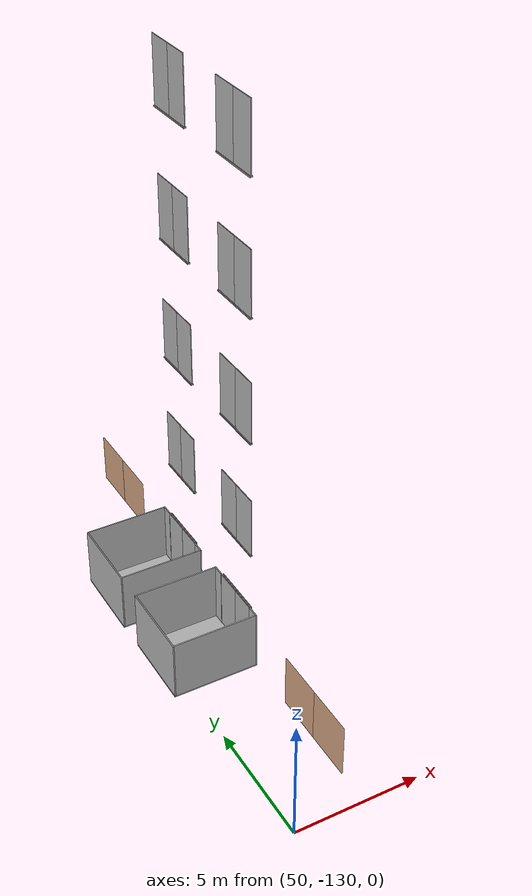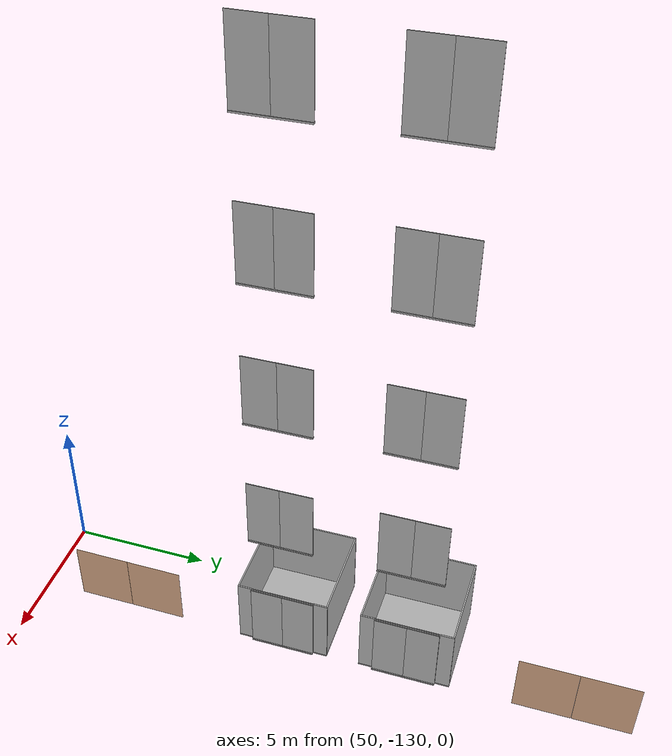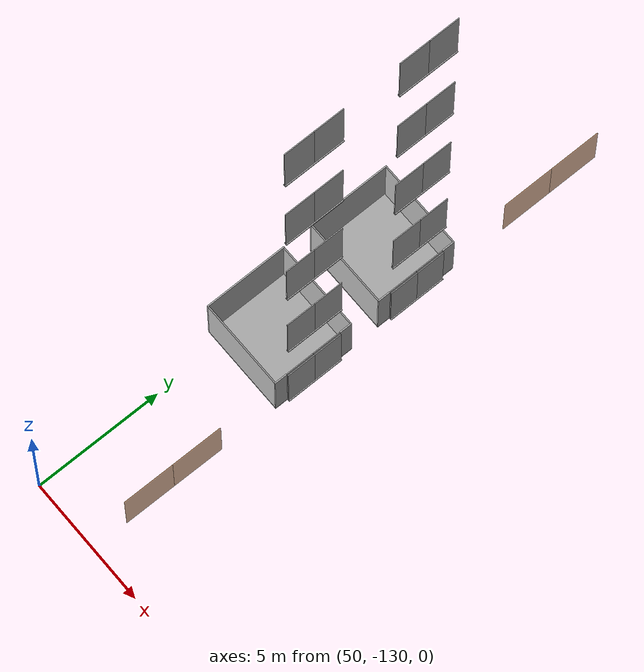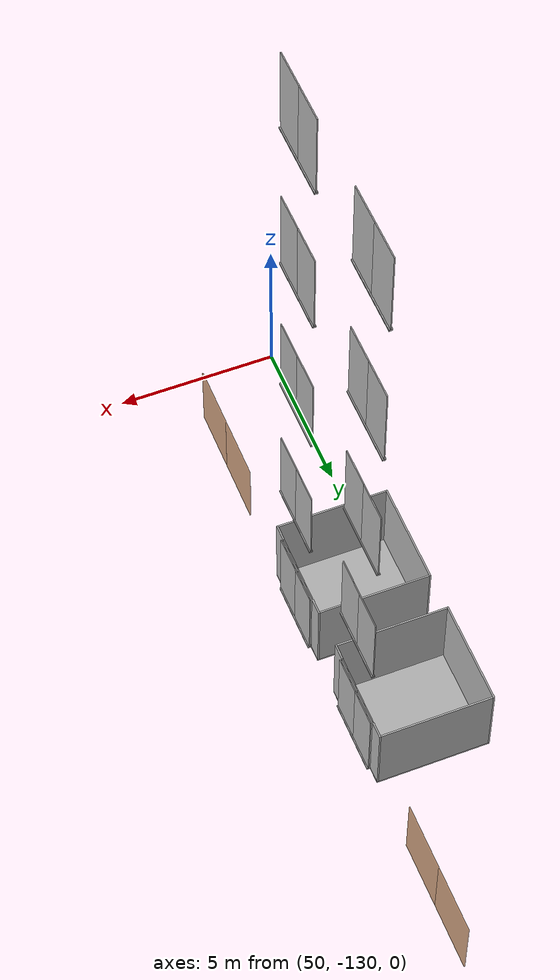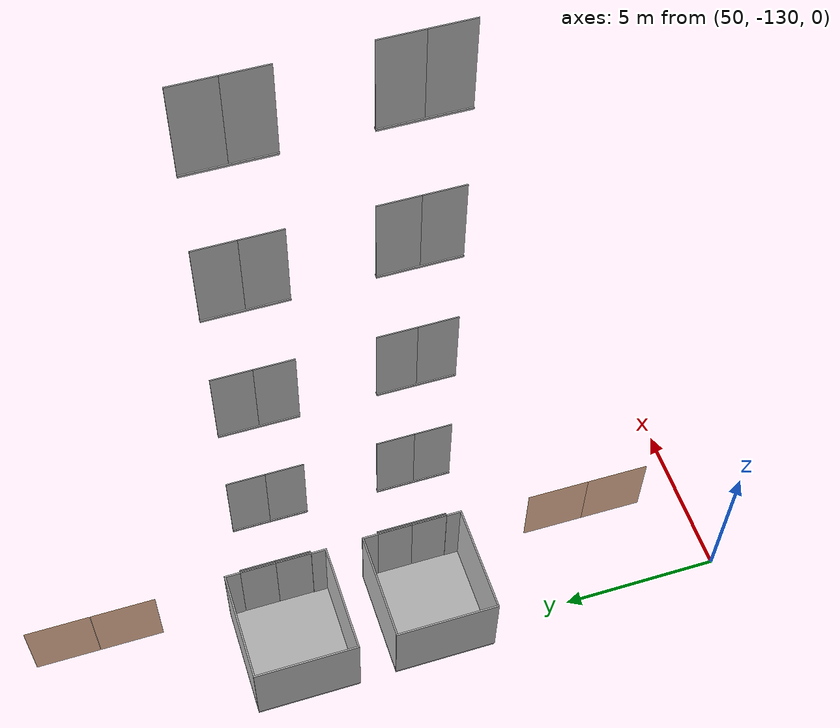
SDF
<sdf version="1.7">
 <world name="sim_world">
  <model name="puerta33">
   <pose>52.84211562555933 -110.4969035260426 0.0 0 0 1.571125227366169</pose>
   <link name="right">
    <pose>1.0067657605571885 0 1.11 0 0 0</pose>
    <visual name="right_visual">
     <geometry><box><size>2.003531521114377 0.03 2.2</size></box></geometry>
     <material>
      <ambient>0.5 0.25 0 0.6</ambient>
      <diffuse>0.5 0.25 0 0.6</diffuse>
      <pbr><metal><metalness>0.0</metalness></metal></pbr>
     </material>
    </visual>
    <collision name="right_collision">
     <geometry><box><size>2.003531521114377 0.03 2.2</size></box></geometry>
     <surface><contact><collide_bitmask>0x02</collide_bitmask></contact></surface>
    </collision>
    <inertial>
     <mass>50.0</mass>
     <inertia><ixx>20.17041666666667</ixx><iyy>36.89224398374538</iyy><izz>16.729327317078706</izz></inertia>
    </inertial>
   </link>
   <joint name="right_joint" type="revolute">
    <parent>world</parent>
    <child>right</child>
    <axis><xyz>0 0 -1</xyz><limit><lower>0</lower><upper>1.57</upper></limit></axis>
    <pose>1.0067657605571885 0 0 0 0 0</pose>
   </joint>
   <link name="left">
    <pose>-1.0067657605571885 0 1.11 0 0 0</pose>
    <visual name="left_visual">
     <geometry><box><size>2.003531521114377 0.03 2.2</size></box></geometry>
     <material>
      <ambient>0.5 0.25 0 0.6</ambient>
      <diffuse>0.5 0.25 0 0.6</diffuse>
      <pbr><metal><metalness>0.0</metalness></metal></pbr>
     </material>
    </visual>
    <collision name="left_collision">
     <geometry><box><size>2.003531521114377 0.03 2.2</size></box></geometry>
     <surface><contact><collide_bitmask>0x02</collide_bitmask></contact></surface>
    </collision>
    <inertial>
     <mass>50.0</mass>
     <inertia><ixx>20.17041666666667</ixx><iyy>36.89224398374538</iyy><izz>16.729327317078706</izz></inertia>
    </inertial>
   </link>
   <joint name="left_joint" type="revolute">
    <parent>world</parent>
    <child>left</child>
    <axis><xyz>0 0 -1</xyz><limit><lower>-1.57</lower><upper>0</upper></limit></axis>
    <pose>-1.0067657605571885 0 0 0 0 0</pose>
   </joint>
   <plugin name="register_component" filename="libregister_component.so">
    <component name="Door">
     <v_max_door>0.5</v_max_door>
     <a_max_door>0.3</a_max_door>
     <a_nom_door>0.15</a_nom_door>
     <dx_min_door>0.01</dx_min_door>
     <f_max_door>500.0</f_max_door>
     <ros_interface>true</ros_interface>
     <door name="puerta33" type="DoubleSwingDoor" left_joint_name="left_joint" right_joint_name="right_joint"/>
    </component>
   </plugin>
  </model>
  <model name="puerta34">
   <pose>52.81154465724002 -126.58664757472704 0.0 0 0 1.565759239575906</pose>
   <link name="right">
    <pose>1.0002811700648835 0 1.11 0 0 0</pose>
    <visual name="right_visual">
     <geometry><box><size>1.990562340129767 0.03 2.2</size></box></geometry>
     <material>
      <ambient>0.5 0.25 0 0.6</ambient>
      <diffuse>0.5 0.25 0 0.6</diffuse>
      <pbr><metal><metalness>0.0</metalness></metal></pbr>
     </material>
    </visual>
    <collision name="right_collision">
     <geometry><box><size>1.990562340129767 0.03 2.2</size></box></geometry>
     <surface><contact><collide_bitmask>0x02</collide_bitmask></contact></surface>
    </collision>
    <inertial>
     <mass>50.0</mass>
     <inertia><ixx>20.17041666666667</ixx><iyy>36.676410124762064</iyy><izz>16.513493458095393</izz></inertia>
    </inertial>
   </link>
   <joint name="right_joint" type="revolute">
    <parent>world</parent>
    <child>right</child>
    <axis><xyz>0 0 -1</xyz><limit><lower>0</lower><upper>1.57</upper></limit></axis>
    <pose>1.0002811700648835 0 0 0 0 0</pose>
   </joint>
   <link name="left">
    <pose>-1.0002811700648835 0 1.11 0 0 0</pose>
    <visual name="left_visual">
     <geometry><box><size>1.990562340129767 0.03 2.2</size></box></geometry>
     <material>
      <ambient>0.5 0.25 0 0.6</ambient>
      <diffuse>0.5 0.25 0 0.6</diffuse>
      <pbr><metal><metalness>0.0</metalness></metal></pbr>
     </material>
    </visual>
    <collision name="left_collision">
     <geometry><box><size>1.990562340129767 0.03 2.2</size></box></geometry>
     <surface><contact><collide_bitmask>0x02</collide_bitmask></contact></surface>
    </collision>
    <inertial>
     <mass>50.0</mass>
     <inertia><ixx>20.17041666666667</ixx><iyy>36.676410124762064</iyy><izz>16.513493458095393</izz></inertia>
    </inertial>
   </link>
   <joint name="left_joint" type="revolute">
    <parent>world</parent>
    <child>left</child>
    <axis><xyz>0 0 -1</xyz><limit><lower>-1.57</lower><upper>0</upper></limit></axis>
    <pose>-1.0002811700648835 0 0 0 0 0</pose>
   </joint>
   <plugin name="register_component" filename="libregister_component.so">
    <component name="Door">
     <v_max_door>0.5</v_max_door>
     <a_max_door>0.3</a_max_door>
     <a_nom_door>0.15</a_nom_door>
     <dx_min_door>0.01</dx_min_door>
     <f_max_door>500.0</f_max_door>
     <ros_interface>true</ros_interface>
     <door name="puerta34" type="DoubleSwingDoor" left_joint_name="left_joint" right_joint_name="right_joint"/>
    </component>
   </plugin>
  </model>
  <model name="ShaftDoor_lift_3_L0_name">
   <pose>52.88287037969792 -116.30427629511381 0.0 0 0 -1.57</pose>
   <link name="right_door">
    <pose>0.5625 0 1.25 0 0 0</pose>
    <visual name="right_door_visual">
     <geometry><box><size>1.125 0.03 2.5</size></box></geometry>
     <material>
      <ambient>0.5 0.5 0.5 1</ambient>
      <diffuse>0.7 0.7 0.7 1</diffuse>
      <specular>0.6 0.6 0.6 1</specular>
      <emissive>0.1 0.1 0.1 1</emissive>
     </material>
    </visual>
    <collision name="right_door_collision">
     <geometry><box><size>1.125 0.03 2.5</size></box></geometry>
     <surface><contact><collide_bitmask>0x02</collide_bitmask></contact></surface>
    </collision>
   </link>
   <link name="left_door">
    <pose>-0.5625 0 1.25 0 0 0</pose>
    <visual name="left_door_visual">
     <geometry><box><size>1.125 0.03 2.5</size></box></geometry>
     <material>
      <ambient>0.5 0.5 0.5 1</ambient>
      <diffuse>0.7 0.7 0.7 1</diffuse>
      <specular>0.6 0.6 0.6 1</specular>
      <emissive>0.1 0.1 0.1 1</emissive>
     </material>
    </visual>
    <collision name="left_door_collision">
     <geometry><box><size>1.125 0.03 2.5</size></box></geometry>
     <surface><contact><collide_bitmask>0x02</collide_bitmask></contact></surface>
    </collision>
   </link>
   <joint name="right_joint" type="prismatic">
    <parent>world</parent>
    <child>right_door</child>
    <axis><xyz>1 0 0</xyz><limit><lower>0</lower><upper>1.125</upper></limit></axis>
   </joint>
   <joint name="left_joint" type="prismatic">
    <parent>world</parent>
    <child>left_door</child>
    <axis><xyz>1 0 0</xyz><limit><lower>-1.125</lower><upper>0</upper></limit></axis>
   </joint>
   <link name="ramp">
    <pose>0 0 -0.025 0 0 0</pose>
    <visual name="ramp_visual">
     <geometry><box><size>2.25 0.1 0.05</size></box></geometry>
     <material>
      <ambient>0.5 0.5 0.5 1</ambient>
      <diffuse>0.7 0.7 0.7 1</diffuse>
      <specular>0.6 0.6 0.6 1</specular>
      <emissive>0.1 0.1 0.1 1</emissive>
     </material>
    </visual>
    <collision name="ramp_collision">
     <geometry><box><size>2.25 0.1 0.05</size></box></geometry>
     <surface><contact><collide_bitmask>0x02</collide_bitmask></contact></surface>
    </collision>
   </link>
   <joint name="ramp_joint" type="fixed"><parent>world</parent><child>ramp</child></joint>
   <plugin name="register_component" filename="libregister_component.so">
    <component name="Door">
     <v_max_door>0.3</v_max_door>
     <a_max_door>0.2</a_max_door>
     <a_nom_door>0.1</a_nom_door>
     <dx_min_door>0.0001</dx_min_door>
     <f_max_door>35.0</f_max_door>
     <door left_joint_name="left_joint" name="ShaftDoor_lift_3_L0_name" right_joint_name="right_joint" type="DoubleSlidingDoor"/>
    </component>
   </plugin>
  </model>
  <model name="ShaftDoor_lift_3_L1_name">
   <pose>52.88287037969792 -116.30427629511381 5.0 0 0 -1.57</pose>
   <link name="right_door">
    <pose>0.5625 0 1.25 0 0 0</pose>
    <visual name="right_door_visual">
     <geometry><box><size>1.125 0.03 2.5</size></box></geometry>
     <material>
      <ambient>0.5 0.5 0.5 1</ambient>
      <diffuse>0.7 0.7 0.7 1</diffuse>
      <specular>0.6 0.6 0.6 1</specular>
      <emissive>0.1 0.1 0.1 1</emissive>
     </material>
    </visual>
    <collision name="right_door_collision">
     <geometry><box><size>1.125 0.03 2.5</size></box></geometry>
     <surface><contact><collide_bitmask>0x02</collide_bitmask></contact></surface>
    </collision>
   </link>
   <link name="left_door">
    <pose>-0.5625 0 1.25 0 0 0</pose>
    <visual name="left_door_visual">
     <geometry><box><size>1.125 0.03 2.5</size></box></geometry>
     <material>
      <ambient>0.5 0.5 0.5 1</ambient>
      <diffuse>0.7 0.7 0.7 1</diffuse>
      <specular>0.6 0.6 0.6 1</specular>
      <emissive>0.1 0.1 0.1 1</emissive>
     </material>
    </visual>
    <collision name="left_door_collision">
     <geometry><box><size>1.125 0.03 2.5</size></box></geometry>
     <surface><contact><collide_bitmask>0x02</collide_bitmask></contact></surface>
    </collision>
   </link>
   <joint name="right_joint" type="prismatic">
    <parent>world</parent>
    <child>right_door</child>
    <axis><xyz>1 0 0</xyz><limit><lower>0</lower><upper>1.125</upper></limit></axis>
   </joint>
   <joint name="left_joint" type="prismatic">
    <parent>world</parent>
    <child>left_door</child>
    <axis><xyz>1 0 0</xyz><limit><lower>-1.125</lower><upper>0</upper></limit></axis>
   </joint>
   <link name="ramp">
    <pose>0 0 -0.025 0 0 0</pose>
    <visual name="ramp_visual">
     <geometry><box><size>2.25 0.1 0.05</size></box></geometry>
     <material>
      <ambient>0.5 0.5 0.5 1</ambient>
      <diffuse>0.7 0.7 0.7 1</diffuse>
      <specular>0.6 0.6 0.6 1</specular>
      <emissive>0.1 0.1 0.1 1</emissive>
     </material>
    </visual>
    <collision name="ramp_collision">
     <geometry><box><size>2.25 0.1 0.05</size></box></geometry>
     <surface><contact><collide_bitmask>0x02</collide_bitmask></contact></surface>
    </collision>
   </link>
   <joint name="ramp_joint" type="fixed"><parent>world</parent><child>ramp</child></joint>
   <plugin name="register_component" filename="libregister_component.so">
    <component name="Door">
     <v_max_door>0.3</v_max_door>
     <a_max_door>0.2</a_max_door>
     <a_nom_door>0.1</a_nom_door>
     <dx_min_door>0.0001</dx_min_door>
     <f_max_door>35.0</f_max_door>
     <door left_joint_name="left_joint" name="ShaftDoor_lift_3_L1_name" right_joint_name="right_joint" type="DoubleSlidingDoor"/>
    </component>
   </plugin>
  </model>
  <model name="ShaftDoor_lift_3_L2_name">
   <pose>52.88287037969792 -116.30427629511381 10.0 0 0 -1.57</pose>
   <link name="right_door">
    <pose>0.5625 0 1.25 0 0 0</pose>
    <visual name="right_door_visual">
     <geometry><box><size>1.125 0.03 2.5</size></box></geometry>
     <material>
      <ambient>0.5 0.5 0.5 1</ambient>
      <diffuse>0.7 0.7 0.7 1</diffuse>
      <specular>0.6 0.6 0.6 1</specular>
      <emissive>0.1 0.1 0.1 1</emissive>
     </material>
    </visual>
    <collision name="right_door_collision">
     <geometry><box><size>1.125 0.03 2.5</size></box></geometry>
     <surface><contact><collide_bitmask>0x02</collide_bitmask></contact></surface>
    </collision>
   </link>
   <link name="left_door">
    <pose>-0.5625 0 1.25 0 0 0</pose>
    <visual name="left_door_visual">
     <geometry><box><size>1.125 0.03 2.5</size></box></geometry>
     <material>
      <ambient>0.5 0.5 0.5 1</ambient>
      <diffuse>0.7 0.7 0.7 1</diffuse>
      <specular>0.6 0.6 0.6 1</specular>
      <emissive>0.1 0.1 0.1 1</emissive>
     </material>
    </visual>
    <collision name="left_door_collision">
     <geometry><box><size>1.125 0.03 2.5</size></box></geometry>
     <surface><contact><collide_bitmask>0x02</collide_bitmask></contact></surface>
    </collision>
   </link>
   <joint name="right_joint" type="prismatic">
    <parent>world</parent>
    <child>right_door</child>
    <axis><xyz>1 0 0</xyz><limit><lower>0</lower><upper>1.125</upper></limit></axis>
   </joint>
   <joint name="left_joint" type="prismatic">
    <parent>world</parent>
    <child>left_door</child>
    <axis><xyz>1 0 0</xyz><limit><lower>-1.125</lower><upper>0</upper></limit></axis>
   </joint>
   <link name="ramp">
    <pose>0 0 -0.025 0 0 0</pose>
    <visual name="ramp_visual">
     <geometry><box><size>2.25 0.1 0.05</size></box></geometry>
     <material>
      <ambient>0.5 0.5 0.5 1</ambient>
      <diffuse>0.7 0.7 0.7 1</diffuse>
      <specular>0.6 0.6 0.6 1</specular>
      <emissive>0.1 0.1 0.1 1</emissive>
     </material>
    </visual>
    <collision name="ramp_collision">
     <geometry><box><size>2.25 0.1 0.05</size></box></geometry>
     <surface><contact><collide_bitmask>0x02</collide_bitmask></contact></surface>
    </collision>
   </link>
   <joint name="ramp_joint" type="fixed"><parent>world</parent><child>ramp</child></joint>
   <plugin name="register_component" filename="libregister_component.so">
    <component name="Door">
     <v_max_door>0.3</v_max_door>
     <a_max_door>0.2</a_max_door>
     <a_nom_door>0.1</a_nom_door>
     <dx_min_door>0.0001</dx_min_door>
     <f_max_door>35.0</f_max_door>
     <door left_joint_name="left_joint" name="ShaftDoor_lift_3_L2_name" right_joint_name="right_joint" type="DoubleSlidingDoor"/>
    </component>
   </plugin>
  </model>
  <model name="ShaftDoor_lift_3_L3_name">
   <pose>52.88287037969792 -116.30427629511381 15.0 0 0 -1.57</pose>
   <link name="right_door">
    <pose>0.5625 0 1.25 0 0 0</pose>
    <visual name="right_door_visual">
     <geometry><box><size>1.125 0.03 2.5</size></box></geometry>
     <material>
      <ambient>0.5 0.5 0.5 1</ambient>
      <diffuse>0.7 0.7 0.7 1</diffuse>
      <specular>0.6 0.6 0.6 1</specular>
      <emissive>0.1 0.1 0.1 1</emissive>
     </material>
    </visual>
    <collision name="right_door_collision">
     <geometry><box><size>1.125 0.03 2.5</size></box></geometry>
     <surface><contact><collide_bitmask>0x02</collide_bitmask></contact></surface>
    </collision>
   </link>
   <link name="left_door">
    <pose>-0.5625 0 1.25 0 0 0</pose>
    <visual name="left_door_visual">
     <geometry><box><size>1.125 0.03 2.5</size></box></geometry>
     <material>
      <ambient>0.5 0.5 0.5 1</ambient>
      <diffuse>0.7 0.7 0.7 1</diffuse>
      <specular>0.6 0.6 0.6 1</specular>
      <emissive>0.1 0.1 0.1 1</emissive>
     </material>
    </visual>
    <collision name="left_door_collision">
     <geometry><box><size>1.125 0.03 2.5</size></box></geometry>
     <surface><contact><collide_bitmask>0x02</collide_bitmask></contact></surface>
    </collision>
   </link>
   <joint name="right_joint" type="prismatic">
    <parent>world</parent>
    <child>right_door</child>
    <axis><xyz>1 0 0</xyz><limit><lower>0</lower><upper>1.125</upper></limit></axis>
   </joint>
   <joint name="left_joint" type="prismatic">
    <parent>world</parent>
    <child>left_door</child>
    <axis><xyz>1 0 0</xyz><limit><lower>-1.125</lower><upper>0</upper></limit></axis>
   </joint>
   <link name="ramp">
    <pose>0 0 -0.025 0 0 0</pose>
    <visual name="ramp_visual">
     <geometry><box><size>2.25 0.1 0.05</size></box></geometry>
     <material>
      <ambient>0.5 0.5 0.5 1</ambient>
      <diffuse>0.7 0.7 0.7 1</diffuse>
      <specular>0.6 0.6 0.6 1</specular>
      <emissive>0.1 0.1 0.1 1</emissive>
     </material>
    </visual>
    <collision name="ramp_collision">
     <geometry><box><size>2.25 0.1 0.05</size></box></geometry>
     <surface><contact><collide_bitmask>0x02</collide_bitmask></contact></surface>
    </collision>
   </link>
   <joint name="ramp_joint" type="fixed"><parent>world</parent><child>ramp</child></joint>
   <plugin name="register_component" filename="libregister_component.so">
    <component name="Door">
     <v_max_door>0.3</v_max_door>
     <a_max_door>0.2</a_max_door>
     <a_nom_door>0.1</a_nom_door>
     <dx_min_door>0.0001</dx_min_door>
     <f_max_door>35.0</f_max_door>
     <door left_joint_name="left_joint" name="ShaftDoor_lift_3_L3_name" right_joint_name="right_joint" type="DoubleSlidingDoor"/>
    </component>
   </plugin>
  </model>
  <model name="ShaftDoor_lift_3_L4_name">
   <pose>52.88287037969792 -116.30427629511381 20.0 0 0 -1.57</pose>
   <link name="right_door">
    <pose>0.5625 0 1.25 0 0 0</pose>
    <visual name="right_door_visual">
     <geometry><box><size>1.125 0.03 2.5</size></box></geometry>
     <material>
      <ambient>0.5 0.5 0.5 1</ambient>
      <diffuse>0.7 0.7 0.7 1</diffuse>
      <specular>0.6 0.6 0.6 1</specular>
      <emissive>0.1 0.1 0.1 1</emissive>
     </material>
    </visual>
    <collision name="right_door_collision">
     <geometry><box><size>1.125 0.03 2.5</size></box></geometry>
     <surface><contact><collide_bitmask>0x02</collide_bitmask></contact></surface>
    </collision>
   </link>
   <link name="left_door">
    <pose>-0.5625 0 1.25 0 0 0</pose>
    <visual name="left_door_visual">
     <geometry><box><size>1.125 0.03 2.5</size></box></geometry>
     <material>
      <ambient>0.5 0.5 0.5 1</ambient>
      <diffuse>0.7 0.7 0.7 1</diffuse>
      <specular>0.6 0.6 0.6 1</specular>
      <emissive>0.1 0.1 0.1 1</emissive>
     </material>
    </visual>
    <collision name="left_door_collision">
     <geometry><box><size>1.125 0.03 2.5</size></box></geometry>
     <surface><contact><collide_bitmask>0x02</collide_bitmask></contact></surface>
    </collision>
   </link>
   <joint name="right_joint" type="prismatic">
    <parent>world</parent>
    <child>right_door</child>
    <axis><xyz>1 0 0</xyz><limit><lower>0</lower><upper>1.125</upper></limit></axis>
   </joint>
   <joint name="left_joint" type="prismatic">
    <parent>world</parent>
    <child>left_door</child>
    <axis><xyz>1 0 0</xyz><limit><lower>-1.125</lower><upper>0</upper></limit></axis>
   </joint>
   <link name="ramp">
    <pose>0 0 -0.025 0 0 0</pose>
    <visual name="ramp_visual">
     <geometry><box><size>2.25 0.1 0.05</size></box></geometry>
     <material>
      <ambient>0.5 0.5 0.5 1</ambient>
      <diffuse>0.7 0.7 0.7 1</diffuse>
      <specular>0.6 0.6 0.6 1</specular>
      <emissive>0.1 0.1 0.1 1</emissive>
     </material>
    </visual>
    <collision name="ramp_collision">
     <geometry><box><size>2.25 0.1 0.05</size></box></geometry>
     <surface><contact><collide_bitmask>0x02</collide_bitmask></contact></surface>
    </collision>
   </link>
   <joint name="ramp_joint" type="fixed"><parent>world</parent><child>ramp</child></joint>
   <plugin name="register_component" filename="libregister_component.so">
    <component name="Door">
     <v_max_door>0.3</v_max_door>
     <a_max_door>0.2</a_max_door>
     <a_nom_door>0.1</a_nom_door>
     <dx_min_door>0.0001</dx_min_door>
     <f_max_door>35.0</f_max_door>
     <door left_joint_name="left_joint" name="ShaftDoor_lift_3_L4_name" right_joint_name="right_joint" type="DoubleSlidingDoor"/>
    </component>
   </plugin>
  </model>
  <model name="lift_3">
   <link name="platform">
    <inertial><mass>1200</mass><inertia><ixx>1056.5</ixx><iyy>1225.25</iyy><izz>2281.25</izz></inertia></inertial>
    <visual name="floor_visual">
     <pose>0 0 -0.025 0 0 0</pose>
     <geometry><box><size>3.25 3.5 0.05</size></box></geometry>
     <material>
      <ambient>0.5 0.5 0.5 1</ambient>
      <diffuse>0.7 0.7 0.7 1</diffuse>
      <specular>0.6 0.6 0.6 1</specular>
      <emissive>0.1 0.1 0.1 1</emissive>
     </material>
    </visual>
    <collision name="floor_collision">
     <pose>0 0 -0.025 0 0 0</pose>
     <geometry><box><size>3.25 3.5 0.05</size></box></geometry>
     <surface><contact><collide_bitmask>0x01</collide_bitmask></contact></surface>
    </collision>
    <visual name="frontwall1_visual">
     <pose>-1.375 1.725 1.25 0 0 0</pose>
     <geometry><box><size>0.5 0.05 2.5</size></box></geometry>
     <material>
      <ambient>0.5 0.5 0.5 1</ambient>
      <diffuse>0.7 0.7 0.7 1</diffuse>
      <specular>0.6 0.6 0.6 1</specular>
      <emissive>0.1 0.1 0.1 1</emissive>
     </material>
    </visual>
    <collision name="frontwall1_collision">
     <pose>-1.375 1.725 1.25 0 0 0</pose>
     <geometry><box><size>0.5 0.05 2.5</size></box></geometry>
     <surface><contact><collide_bitmask>0x01</collide_bitmask></contact></surface>
    </collision>
    <visual name="frontwall2_visual">
     <pose>1.375 1.725 1.25 0 0 0</pose>
     <geometry><box><size>0.5 0.05 2.5</size></box></geometry>
     <material>
      <ambient>0.5 0.5 0.5 1</ambient>
      <diffuse>0.7 0.7 0.7 1</diffuse>
      <specular>0.6 0.6 0.6 1</specular>
      <emissive>0.1 0.1 0.1 1</emissive>
     </material>
    </visual>
    <collision name="frontwall2_collision">
     <pose>1.375 1.725 1.25 0 0 0</pose>
     <geometry><box><size>0.5 0.05 2.5</size></box></geometry>
     <surface><contact><collide_bitmask>0x01</collide_bitmask></contact></surface>
    </collision>
    <visual name="backwall1_visual">
     <pose>0.0 -1.725 1.25 0 0 0</pose>
     <geometry><box><size>3.25 0.05 2.5</size></box></geometry>
     <material>
      <ambient>0.5 0.5 0.5 1</ambient>
      <diffuse>0.7 0.7 0.7 1</diffuse>
      <specular>0.6 0.6 0.6 1</specular>
      <emissive>0.1 0.1 0.1 1</emissive>
     </material>
    </visual>
    <collision name="backwall1_collision">
     <pose>0.0 -1.725 1.25 0 0 0</pose>
     <geometry><box><size>3.25 0.05 2.5</size></box></geometry>
     <surface><contact><collide_bitmask>0x01</collide_bitmask></contact></surface>
    </collision>
    <visual name="leftwall1_visual">
     <pose>-1.6 0.0 1.25 0 0 1.5707963267948966</pose>
     <geometry><box><size>3.4 0.05 2.5</size></box></geometry>
     <material>
      <ambient>0.5 0.5 0.5 1</ambient>
      <diffuse>0.7 0.7 0.7 1</diffuse>
      <specular>0.6 0.6 0.6 1</specular>
      <emissive>0.1 0.1 0.1 1</emissive>
     </material>
    </visual>
    <collision name="leftwall1_collision">
     <pose>-1.6 0.0 1.25 0 0 1.5707963267948966</pose>
     <geometry><box><size>3.4 0.05 2.5</size></box></geometry>
     <surface><contact><collide_bitmask>0x01</collide_bitmask></contact></surface>
    </collision>
    <visual name="rightwall1_visual">
     <pose>1.6 0.0 1.25 0 0 1.5707963267948966</pose>
     <geometry><box><size>3.4 0.05 2.5</size></box></geometry>
     <material>
      <ambient>0.5 0.5 0.5 1</ambient>
      <diffuse>0.7 0.7 0.7 1</diffuse>
      <specular>0.6 0.6 0.6 1</specular>
      <emissive>0.1 0.1 0.1 1</emissive>
     </material>
    </visual>
    <collision name="rightwall1_collision">
     <pose>1.6 0.0 1.25 0 0 1.5707963267948966</pose>
     <geometry><box><size>3.4 0.05 2.5</size></box></geometry>
     <surface><contact><collide_bitmask>0x01</collide_bitmask></contact></surface>
    </collision>
   </link>
   <joint name="cabin_joint" type="prismatic">
    <parent>world</parent>
    <child>platform</child>
    <axis><xyz>0 0 1</xyz></axis>
   </joint>
   <model name="CabinDoor_lift_3_name">
    <pose>0.0 1.725 0 0 0 0.0</pose>
    <link name="right_door">
     <pose>0.5625 0 1.25 0 0 0</pose>
     <visual name="right_door_visual">
      <geometry><box><size>1.125 0.03 2.5</size></box></geometry>
      <material>
       <ambient>0.5 0.5 0.5 1</ambient>
       <diffuse>0.7 0.7 0.7 1</diffuse>
       <specular>0.6 0.6 0.6 1</specular>
       <emissive>0.1 0.1 0.1 1</emissive>
      </material>
     </visual>
     <collision name="right_door_collision">
      <geometry><box><size>1.125 0.03 2.5</size></box></geometry>
      <surface><contact><collide_bitmask>0x02</collide_bitmask></contact></surface>
     </collision>
    </link>
    <link name="left_door">
     <pose>-0.5625 0 1.25 0 0 0</pose>
     <visual name="left_door_visual">
      <geometry><box><size>1.125 0.03 2.5</size></box></geometry>
      <material>
       <ambient>0.5 0.5 0.5 1</ambient>
       <diffuse>0.7 0.7 0.7 1</diffuse>
       <specular>0.6 0.6 0.6 1</specular>
       <emissive>0.1 0.1 0.1 1</emissive>
      </material>
     </visual>
     <collision name="left_door_collision">
      <geometry><box><size>1.125 0.03 2.5</size></box></geometry>
      <surface><contact><collide_bitmask>0x02</collide_bitmask></contact></surface>
     </collision>
    </link>
    <plugin name="register_component" filename="libregister_component.so">
     <component name="Door">
      <v_max_door>0.3</v_max_door>
      <a_max_door>0.2</a_max_door>
      <a_nom_door>0.1</a_nom_door>
      <dx_min_door>0.0001</dx_min_door>
      <f_max_door>35.0</f_max_door>
      <door left_joint_name="CabinDoor_lift_3_name_left_joint" name="CabinDoor_lift_3_name" right_joint_name="CabinDoor_lift_3_name_right_joint" type="DoubleSlidingDoor"/>
     </component>
    </plugin>
   </model>
   <joint name="CabinDoor_lift_3_name_right_joint" type="prismatic">
    <parent>platform</parent>
    <child>CabinDoor_lift_3_name::right_door</child>
    <axis><xyz>1 0 0</xyz><limit><lower>0</lower><upper>1.125</upper></limit></axis>
   </joint>
   <joint name="CabinDoor_lift_3_name_left_joint" type="prismatic">
    <parent>platform</parent>
    <child>CabinDoor_lift_3_name::left_door</child>
    <axis><xyz>1 0 0</xyz><limit><lower>-1.125</lower><upper>0</upper></limit></axis>
   </joint>
   <plugin name="register_component" filename="libregister_component.so">
    <component name="Lift">
     <lift_name>lift_3</lift_name>
     <floor name="L0" elevation="0.0">
      <door_pair cabin_door="CabinDoor_lift_3_name" shaft_door="ShaftDoor_lift_3_L0_name"/>
     </floor>
     <floor name="L1" elevation="5.0">
      <door_pair cabin_door="CabinDoor_lift_3_name" shaft_door="ShaftDoor_lift_3_L1_name"/>
     </floor>
     <floor name="L2" elevation="10.0">
      <door_pair cabin_door="CabinDoor_lift_3_name" shaft_door="ShaftDoor_lift_3_L2_name"/>
     </floor>
     <floor name="L3" elevation="15.0">
      <door_pair cabin_door="CabinDoor_lift_3_name" shaft_door="ShaftDoor_lift_3_L3_name"/>
     </floor>
     <floor name="L4" elevation="20.0">
      <door_pair cabin_door="CabinDoor_lift_3_name" shaft_door="ShaftDoor_lift_3_L4_name"/>
     </floor>
     <initial_floor>L0</initial_floor>
     <v_max_cabin>2.0</v_max_cabin>
     <a_max_cabin>1.2</a_max_cabin>
     <a_nom_cabin>1.0</a_nom_cabin>
     <dx_min_cabin>0.001</dx_min_cabin>
     <f_max_cabin>25323.0</f_max_cabin>
     <cabin_joint_name>cabin_joint</cabin_joint_name>
    </component>
   </plugin>
   <pose>51.08287095042062 -116.30570968319313 0 0 0 -1.57</pose>
  </model>
  <model name="ShaftDoor_lift_4_L0_name">
   <pose>52.91866776648868 -120.70735487037781 0.0 0 0 -1.57</pose>
   <link name="right_door">
    <pose>0.5625 0 1.25 0 0 0</pose>
    <visual name="right_door_visual">
     <geometry><box><size>1.125 0.03 2.5</size></box></geometry>
     <material>
      <ambient>0.5 0.5 0.5 1</ambient>
      <diffuse>0.7 0.7 0.7 1</diffuse>
      <specular>0.6 0.6 0.6 1</specular>
      <emissive>0.1 0.1 0.1 1</emissive>
     </material>
    </visual>
    <collision name="right_door_collision">
     <geometry><box><size>1.125 0.03 2.5</size></box></geometry>
     <surface><contact><collide_bitmask>0x02</collide_bitmask></contact></surface>
    </collision>
   </link>
   <link name="left_door">
    <pose>-0.5625 0 1.25 0 0 0</pose>
    <visual name="left_door_visual">
     <geometry><box><size>1.125 0.03 2.5</size></box></geometry>
     <material>
      <ambient>0.5 0.5 0.5 1</ambient>
      <diffuse>0.7 0.7 0.7 1</diffuse>
      <specular>0.6 0.6 0.6 1</specular>
      <emissive>0.1 0.1 0.1 1</emissive>
     </material>
    </visual>
    <collision name="left_door_collision">
     <geometry><box><size>1.125 0.03 2.5</size></box></geometry>
     <surface><contact><collide_bitmask>0x02</collide_bitmask></contact></surface>
    </collision>
   </link>
   <joint name="right_joint" type="prismatic">
    <parent>world</parent>
    <child>right_door</child>
    <axis><xyz>1 0 0</xyz><limit><lower>0</lower><upper>1.125</upper></limit></axis>
   </joint>
   <joint name="left_joint" type="prismatic">
    <parent>world</parent>
    <child>left_door</child>
    <axis><xyz>1 0 0</xyz><limit><lower>-1.125</lower><upper>0</upper></limit></axis>
   </joint>
   <link name="ramp">
    <pose>0 0 -0.025 0 0 0</pose>
    <visual name="ramp_visual">
     <geometry><box><size>2.25 0.1 0.05</size></box></geometry>
     <material>
      <ambient>0.5 0.5 0.5 1</ambient>
      <diffuse>0.7 0.7 0.7 1</diffuse>
      <specular>0.6 0.6 0.6 1</specular>
      <emissive>0.1 0.1 0.1 1</emissive>
     </material>
    </visual>
    <collision name="ramp_collision">
     <geometry><box><size>2.25 0.1 0.05</size></box></geometry>
     <surface><contact><collide_bitmask>0x02</collide_bitmask></contact></surface>
    </collision>
   </link>
   <joint name="ramp_joint" type="fixed"><parent>world</parent><child>ramp</child></joint>
   <plugin name="register_component" filename="libregister_component.so">
    <component name="Door">
     <v_max_door>0.3</v_max_door>
     <a_max_door>0.2</a_max_door>
     <a_nom_door>0.1</a_nom_door>
     <dx_min_door>0.0001</dx_min_door>
     <f_max_door>35.0</f_max_door>
     <door left_joint_name="left_joint" name="ShaftDoor_lift_4_L0_name" right_joint_name="right_joint" type="DoubleSlidingDoor"/>
    </component>
   </plugin>
  </model>
  <model name="ShaftDoor_lift_4_L1_name">
   <pose>52.91866776648868 -120.70735487037781 5.0 0 0 -1.57</pose>
   <link name="right_door">
    <pose>0.5625 0 1.25 0 0 0</pose>
    <visual name="right_door_visual">
     <geometry><box><size>1.125 0.03 2.5</size></box></geometry>
     <material>
      <ambient>0.5 0.5 0.5 1</ambient>
      <diffuse>0.7 0.7 0.7 1</diffuse>
      <specular>0.6 0.6 0.6 1</specular>
      <emissive>0.1 0.1 0.1 1</emissive>
     </material>
    </visual>
    <collision name="right_door_collision">
     <geometry><box><size>1.125 0.03 2.5</size></box></geometry>
     <surface><contact><collide_bitmask>0x02</collide_bitmask></contact></surface>
    </collision>
   </link>
   <link name="left_door">
    <pose>-0.5625 0 1.25 0 0 0</pose>
    <visual name="left_door_visual">
     <geometry><box><size>1.125 0.03 2.5</size></box></geometry>
     <material>
      <ambient>0.5 0.5 0.5 1</ambient>
      <diffuse>0.7 0.7 0.7 1</diffuse>
      <specular>0.6 0.6 0.6 1</specular>
      <emissive>0.1 0.1 0.1 1</emissive>
     </material>
    </visual>
    <collision name="left_door_collision">
     <geometry><box><size>1.125 0.03 2.5</size></box></geometry>
     <surface><contact><collide_bitmask>0x02</collide_bitmask></contact></surface>
    </collision>
   </link>
   <joint name="right_joint" type="prismatic">
    <parent>world</parent>
    <child>right_door</child>
    <axis><xyz>1 0 0</xyz><limit><lower>0</lower><upper>1.125</upper></limit></axis>
   </joint>
   <joint name="left_joint" type="prismatic">
    <parent>world</parent>
    <child>left_door</child>
    <axis><xyz>1 0 0</xyz><limit><lower>-1.125</lower><upper>0</upper></limit></axis>
   </joint>
   <link name="ramp">
    <pose>0 0 -0.025 0 0 0</pose>
    <visual name="ramp_visual">
     <geometry><box><size>2.25 0.1 0.05</size></box></geometry>
     <material>
      <ambient>0.5 0.5 0.5 1</ambient>
      <diffuse>0.7 0.7 0.7 1</diffuse>
      <specular>0.6 0.6 0.6 1</specular>
      <emissive>0.1 0.1 0.1 1</emissive>
     </material>
    </visual>
    <collision name="ramp_collision">
     <geometry><box><size>2.25 0.1 0.05</size></box></geometry>
     <surface><contact><collide_bitmask>0x02</collide_bitmask></contact></surface>
    </collision>
   </link>
   <joint name="ramp_joint" type="fixed"><parent>world</parent><child>ramp</child></joint>
   <plugin name="register_component" filename="libregister_component.so">
    <component name="Door">
     <v_max_door>0.3</v_max_door>
     <a_max_door>0.2</a_max_door>
     <a_nom_door>0.1</a_nom_door>
     <dx_min_door>0.0001</dx_min_door>
     <f_max_door>35.0</f_max_door>
     <door left_joint_name="left_joint" name="ShaftDoor_lift_4_L1_name" right_joint_name="right_joint" type="DoubleSlidingDoor"/>
    </component>
   </plugin>
  </model>
  <model name="ShaftDoor_lift_4_L2_name">
   <pose>52.91866776648868 -120.70735487037781 10.0 0 0 -1.57</pose>
   <link name="right_door">
    <pose>0.5625 0 1.25 0 0 0</pose>
    <visual name="right_door_visual">
     <geometry><box><size>1.125 0.03 2.5</size></box></geometry>
     <material>
      <ambient>0.5 0.5 0.5 1</ambient>
      <diffuse>0.7 0.7 0.7 1</diffuse>
      <specular>0.6 0.6 0.6 1</specular>
      <emissive>0.1 0.1 0.1 1</emissive>
     </material>
    </visual>
    <collision name="right_door_collision">
     <geometry><box><size>1.125 0.03 2.5</size></box></geometry>
     <surface><contact><collide_bitmask>0x02</collide_bitmask></contact></surface>
    </collision>
   </link>
   <link name="left_door">
    <pose>-0.5625 0 1.25 0 0 0</pose>
    <visual name="left_door_visual">
     <geometry><box><size>1.125 0.03 2.5</size></box></geometry>
     <material>
      <ambient>0.5 0.5 0.5 1</ambient>
      <diffuse>0.7 0.7 0.7 1</diffuse>
      <specular>0.6 0.6 0.6 1</specular>
      <emissive>0.1 0.1 0.1 1</emissive>
     </material>
    </visual>
    <collision name="left_door_collision">
     <geometry><box><size>1.125 0.03 2.5</size></box></geometry>
     <surface><contact><collide_bitmask>0x02</collide_bitmask></contact></surface>
    </collision>
   </link>
   <joint name="right_joint" type="prismatic">
    <parent>world</parent>
    <child>right_door</child>
    <axis><xyz>1 0 0</xyz><limit><lower>0</lower><upper>1.125</upper></limit></axis>
   </joint>
   <joint name="left_joint" type="prismatic">
    <parent>world</parent>
    <child>left_door</child>
    <axis><xyz>1 0 0</xyz><limit><lower>-1.125</lower><upper>0</upper></limit></axis>
   </joint>
   <link name="ramp">
    <pose>0 0 -0.025 0 0 0</pose>
    <visual name="ramp_visual">
     <geometry><box><size>2.25 0.1 0.05</size></box></geometry>
     <material>
      <ambient>0.5 0.5 0.5 1</ambient>
      <diffuse>0.7 0.7 0.7 1</diffuse>
      <specular>0.6 0.6 0.6 1</specular>
      <emissive>0.1 0.1 0.1 1</emissive>
     </material>
    </visual>
    <collision name="ramp_collision">
     <geometry><box><size>2.25 0.1 0.05</size></box></geometry>
     <surface><contact><collide_bitmask>0x02</collide_bitmask></contact></surface>
    </collision>
   </link>
   <joint name="ramp_joint" type="fixed"><parent>world</parent><child>ramp</child></joint>
   <plugin name="register_component" filename="libregister_component.so">
    <component name="Door">
     <v_max_door>0.3</v_max_door>
     <a_max_door>0.2</a_max_door>
     <a_nom_door>0.1</a_nom_door>
     <dx_min_door>0.0001</dx_min_door>
     <f_max_door>35.0</f_max_door>
     <door left_joint_name="left_joint" name="ShaftDoor_lift_4_L2_name" right_joint_name="right_joint" type="DoubleSlidingDoor"/>
    </component>
   </plugin>
  </model>
  <model name="ShaftDoor_lift_4_L3_name">
   <pose>52.91866776648868 -120.70735487037781 15.0 0 0 -1.57</pose>
   <link name="right_door">
    <pose>0.5625 0 1.25 0 0 0</pose>
    <visual name="right_door_visual">
     <geometry><box><size>1.125 0.03 2.5</size></box></geometry>
     <material>
      <ambient>0.5 0.5 0.5 1</ambient>
      <diffuse>0.7 0.7 0.7 1</diffuse>
      <specular>0.6 0.6 0.6 1</specular>
      <emissive>0.1 0.1 0.1 1</emissive>
     </material>
    </visual>
    <collision name="right_door_collision">
     <geometry><box><size>1.125 0.03 2.5</size></box></geometry>
     <surface><contact><collide_bitmask>0x02</collide_bitmask></contact></surface>
    </collision>
   </link>
   <link name="left_door">
    <pose>-0.5625 0 1.25 0 0 0</pose>
    <visual name="left_door_visual">
     <geometry><box><size>1.125 0.03 2.5</size></box></geometry>
     <material>
      <ambient>0.5 0.5 0.5 1</ambient>
      <diffuse>0.7 0.7 0.7 1</diffuse>
      <specular>0.6 0.6 0.6 1</specular>
      <emissive>0.1 0.1 0.1 1</emissive>
     </material>
    </visual>
    <collision name="left_door_collision">
     <geometry><box><size>1.125 0.03 2.5</size></box></geometry>
     <surface><contact><collide_bitmask>0x02</collide_bitmask></contact></surface>
    </collision>
   </link>
   <joint name="right_joint" type="prismatic">
    <parent>world</parent>
    <child>right_door</child>
    <axis><xyz>1 0 0</xyz><limit><lower>0</lower><upper>1.125</upper></limit></axis>
   </joint>
   <joint name="left_joint" type="prismatic">
    <parent>world</parent>
    <child>left_door</child>
    <axis><xyz>1 0 0</xyz><limit><lower>-1.125</lower><upper>0</upper></limit></axis>
   </joint>
   <link name="ramp">
    <pose>0 0 -0.025 0 0 0</pose>
    <visual name="ramp_visual">
     <geometry><box><size>2.25 0.1 0.05</size></box></geometry>
     <material>
      <ambient>0.5 0.5 0.5 1</ambient>
      <diffuse>0.7 0.7 0.7 1</diffuse>
      <specular>0.6 0.6 0.6 1</specular>
      <emissive>0.1 0.1 0.1 1</emissive>
     </material>
    </visual>
    <collision name="ramp_collision">
     <geometry><box><size>2.25 0.1 0.05</size></box></geometry>
     <surface><contact><collide_bitmask>0x02</collide_bitmask></contact></surface>
    </collision>
   </link>
   <joint name="ramp_joint" type="fixed"><parent>world</parent><child>ramp</child></joint>
   <plugin name="register_component" filename="libregister_component.so">
    <component name="Door">
     <v_max_door>0.3</v_max_door>
     <a_max_door>0.2</a_max_door>
     <a_nom_door>0.1</a_nom_door>
     <dx_min_door>0.0001</dx_min_door>
     <f_max_door>35.0</f_max_door>
     <door left_joint_name="left_joint" name="ShaftDoor_lift_4_L3_name" right_joint_name="right_joint" type="DoubleSlidingDoor"/>
    </component>
   </plugin>
  </model>
  <model name="ShaftDoor_lift_4_L4_name">
   <pose>52.91866776648868 -120.70735487037781 20.0 0 0 -1.57</pose>
   <link name="right_door">
    <pose>0.5625 0 1.25 0 0 0</pose>
    <visual name="right_door_visual">
     <geometry><box><size>1.125 0.03 2.5</size></box></geometry>
     <material>
      <ambient>0.5 0.5 0.5 1</ambient>
      <diffuse>0.7 0.7 0.7 1</diffuse>
      <specular>0.6 0.6 0.6 1</specular>
      <emissive>0.1 0.1 0.1 1</emissive>
     </material>
    </visual>
    <collision name="right_door_collision">
     <geometry><box><size>1.125 0.03 2.5</size></box></geometry>
     <surface><contact><collide_bitmask>0x02</collide_bitmask></contact></surface>
    </collision>
   </link>
   <link name="left_door">
    <pose>-0.5625 0 1.25 0 0 0</pose>
    <visual name="left_door_visual">
     <geometry><box><size>1.125 0.03 2.5</size></box></geometry>
     <material>
      <ambient>0.5 0.5 0.5 1</ambient>
      <diffuse>0.7 0.7 0.7 1</diffuse>
      <specular>0.6 0.6 0.6 1</specular>
      <emissive>0.1 0.1 0.1 1</emissive>
     </material>
    </visual>
    <collision name="left_door_collision">
     <geometry><box><size>1.125 0.03 2.5</size></box></geometry>
     <surface><contact><collide_bitmask>0x02</collide_bitmask></contact></surface>
    </collision>
   </link>
   <joint name="right_joint" type="prismatic">
    <parent>world</parent>
    <child>right_door</child>
    <axis><xyz>1 0 0</xyz><limit><lower>0</lower><upper>1.125</upper></limit></axis>
   </joint>
   <joint name="left_joint" type="prismatic">
    <parent>world</parent>
    <child>left_door</child>
    <axis><xyz>1 0 0</xyz><limit><lower>-1.125</lower><upper>0</upper></limit></axis>
   </joint>
   <link name="ramp">
    <pose>0 0 -0.025 0 0 0</pose>
    <visual name="ramp_visual">
     <geometry><box><size>2.25 0.1 0.05</size></box></geometry>
     <material>
      <ambient>0.5 0.5 0.5 1</ambient>
      <diffuse>0.7 0.7 0.7 1</diffuse>
      <specular>0.6 0.6 0.6 1</specular>
      <emissive>0.1 0.1 0.1 1</emissive>
     </material>
    </visual>
    <collision name="ramp_collision">
     <geometry><box><size>2.25 0.1 0.05</size></box></geometry>
     <surface><contact><collide_bitmask>0x02</collide_bitmask></contact></surface>
    </collision>
   </link>
   <joint name="ramp_joint" type="fixed"><parent>world</parent><child>ramp</child></joint>
   <plugin name="register_component" filename="libregister_component.so">
    <component name="Door">
     <v_max_door>0.3</v_max_door>
     <a_max_door>0.2</a_max_door>
     <a_nom_door>0.1</a_nom_door>
     <dx_min_door>0.0001</dx_min_door>
     <f_max_door>35.0</f_max_door>
     <door left_joint_name="left_joint" name="ShaftDoor_lift_4_L4_name" right_joint_name="right_joint" type="DoubleSlidingDoor"/>
    </component>
   </plugin>
  </model>
  <model name="lift_4">
   <link name="platform">
    <inertial><mass>1200</mass><inertia><ixx>1056.5</ixx><iyy>1225.25</iyy><izz>2281.25</izz></inertia></inertial>
    <visual name="floor_visual">
     <pose>0 0 -0.025 0 0 0</pose>
     <geometry><box><size>3.25 3.5 0.05</size></box></geometry>
     <material>
      <ambient>0.5 0.5 0.5 1</ambient>
      <diffuse>0.7 0.7 0.7 1</diffuse>
      <specular>0.6 0.6 0.6 1</specular>
      <emissive>0.1 0.1 0.1 1</emissive>
     </material>
    </visual>
    <collision name="floor_collision">
     <pose>0 0 -0.025 0 0 0</pose>
     <geometry><box><size>3.25 3.5 0.05</size></box></geometry>
     <surface><contact><collide_bitmask>0x01</collide_bitmask></contact></surface>
    </collision>
    <visual name="frontwall1_visual">
     <pose>-1.375 1.725 1.25 0 0 0</pose>
     <geometry><box><size>0.5 0.05 2.5</size></box></geometry>
     <material>
      <ambient>0.5 0.5 0.5 1</ambient>
      <diffuse>0.7 0.7 0.7 1</diffuse>
      <specular>0.6 0.6 0.6 1</specular>
      <emissive>0.1 0.1 0.1 1</emissive>
     </material>
    </visual>
    <collision name="frontwall1_collision">
     <pose>-1.375 1.725 1.25 0 0 0</pose>
     <geometry><box><size>0.5 0.05 2.5</size></box></geometry>
     <surface><contact><collide_bitmask>0x01</collide_bitmask></contact></surface>
    </collision>
    <visual name="frontwall2_visual">
     <pose>1.375 1.725 1.25 0 0 0</pose>
     <geometry><box><size>0.5 0.05 2.5</size></box></geometry>
     <material>
      <ambient>0.5 0.5 0.5 1</ambient>
      <diffuse>0.7 0.7 0.7 1</diffuse>
      <specular>0.6 0.6 0.6 1</specular>
      <emissive>0.1 0.1 0.1 1</emissive>
     </material>
    </visual>
    <collision name="frontwall2_collision">
     <pose>1.375 1.725 1.25 0 0 0</pose>
     <geometry><box><size>0.5 0.05 2.5</size></box></geometry>
     <surface><contact><collide_bitmask>0x01</collide_bitmask></contact></surface>
    </collision>
    <visual name="backwall1_visual">
     <pose>0.0 -1.725 1.25 0 0 0</pose>
     <geometry><box><size>3.25 0.05 2.5</size></box></geometry>
     <material>
      <ambient>0.5 0.5 0.5 1</ambient>
      <diffuse>0.7 0.7 0.7 1</diffuse>
      <specular>0.6 0.6 0.6 1</specular>
      <emissive>0.1 0.1 0.1 1</emissive>
     </material>
    </visual>
    <collision name="backwall1_collision">
     <pose>0.0 -1.725 1.25 0 0 0</pose>
     <geometry><box><size>3.25 0.05 2.5</size></box></geometry>
     <surface><contact><collide_bitmask>0x01</collide_bitmask></contact></surface>
    </collision>
    <visual name="leftwall1_visual">
     <pose>-1.6 0.0 1.25 0 0 1.5707963267948966</pose>
     <geometry><box><size>3.4 0.05 2.5</size></box></geometry>
     <material>
      <ambient>0.5 0.5 0.5 1</ambient>
      <diffuse>0.7 0.7 0.7 1</diffuse>
      <specular>0.6 0.6 0.6 1</specular>
      <emissive>0.1 0.1 0.1 1</emissive>
     </material>
    </visual>
    <collision name="leftwall1_collision">
     <pose>-1.6 0.0 1.25 0 0 1.5707963267948966</pose>
     <geometry><box><size>3.4 0.05 2.5</size></box></geometry>
     <surface><contact><collide_bitmask>0x01</collide_bitmask></contact></surface>
    </collision>
    <visual name="rightwall1_visual">
     <pose>1.6 0.0 1.25 0 0 1.5707963267948966</pose>
     <geometry><box><size>3.4 0.05 2.5</size></box></geometry>
     <material>
      <ambient>0.5 0.5 0.5 1</ambient>
      <diffuse>0.7 0.7 0.7 1</diffuse>
      <specular>0.6 0.6 0.6 1</specular>
      <emissive>0.1 0.1 0.1 1</emissive>
     </material>
    </visual>
    <collision name="rightwall1_collision">
     <pose>1.6 0.0 1.25 0 0 1.5707963267948966</pose>
     <geometry><box><size>3.4 0.05 2.5</size></box></geometry>
     <surface><contact><collide_bitmask>0x01</collide_bitmask></contact></surface>
    </collision>
   </link>
   <joint name="cabin_joint" type="prismatic">
    <parent>world</parent>
    <child>platform</child>
    <axis><xyz>0 0 1</xyz></axis>
   </joint>
   <model name="CabinDoor_lift_4_name">
    <pose>0.0 1.725 0 0 0 0.0</pose>
    <link name="right_door">
     <pose>0.5625 0 1.25 0 0 0</pose>
     <visual name="right_door_visual">
      <geometry><box><size>1.125 0.03 2.5</size></box></geometry>
      <material>
       <ambient>0.5 0.5 0.5 1</ambient>
       <diffuse>0.7 0.7 0.7 1</diffuse>
       <specular>0.6 0.6 0.6 1</specular>
       <emissive>0.1 0.1 0.1 1</emissive>
      </material>
     </visual>
     <collision name="right_door_collision">
      <geometry><box><size>1.125 0.03 2.5</size></box></geometry>
      <surface><contact><collide_bitmask>0x02</collide_bitmask></contact></surface>
     </collision>
    </link>
    <link name="left_door">
     <pose>-0.5625 0 1.25 0 0 0</pose>
     <visual name="left_door_visual">
      <geometry><box><size>1.125 0.03 2.5</size></box></geometry>
      <material>
       <ambient>0.5 0.5 0.5 1</ambient>
       <diffuse>0.7 0.7 0.7 1</diffuse>
       <specular>0.6 0.6 0.6 1</specular>
       <emissive>0.1 0.1 0.1 1</emissive>
      </material>
     </visual>
     <collision name="left_door_collision">
      <geometry><box><size>1.125 0.03 2.5</size></box></geometry>
      <surface><contact><collide_bitmask>0x02</collide_bitmask></contact></surface>
     </collision>
    </link>
    <plugin name="register_component" filename="libregister_component.so">
     <component name="Door">
      <v_max_door>0.3</v_max_door>
      <a_max_door>0.2</a_max_door>
      <a_nom_door>0.1</a_nom_door>
      <dx_min_door>0.0001</dx_min_door>
      <f_max_door>35.0</f_max_door>
      <door left_joint_name="CabinDoor_lift_4_name_left_joint" name="CabinDoor_lift_4_name" right_joint_name="CabinDoor_lift_4_name_right_joint" type="DoubleSlidingDoor"/>
     </component>
    </plugin>
   </model>
   <joint name="CabinDoor_lift_4_name_right_joint" type="prismatic">
    <parent>platform</parent>
    <child>CabinDoor_lift_4_name::right_door</child>
    <axis><xyz>1 0 0</xyz><limit><lower>0</lower><upper>1.125</upper></limit></axis>
   </joint>
   <joint name="CabinDoor_lift_4_name_left_joint" type="prismatic">
    <parent>platform</parent>
    <child>CabinDoor_lift_4_name::left_door</child>
    <axis><xyz>1 0 0</xyz><limit><lower>-1.125</lower><upper>0</upper></limit></axis>
   </joint>
   <plugin name="register_component" filename="libregister_component.so">
    <component name="Lift">
     <lift_name>lift_4</lift_name>
     <floor name="L0" elevation="0.0">
      <door_pair cabin_door="CabinDoor_lift_4_name" shaft_door="ShaftDoor_lift_4_L0_name"/>
     </floor>
     <floor name="L1" elevation="5.0">
      <door_pair cabin_door="CabinDoor_lift_4_name" shaft_door="ShaftDoor_lift_4_L1_name"/>
     </floor>
     <floor name="L2" elevation="10.0">
      <door_pair cabin_door="CabinDoor_lift_4_name" shaft_door="ShaftDoor_lift_4_L2_name"/>
     </floor>
     <floor name="L3" elevation="15.0">
      <door_pair cabin_door="CabinDoor_lift_4_name" shaft_door="ShaftDoor_lift_4_L3_name"/>
     </floor>
     <floor name="L4" elevation="20.0">
      <door_pair cabin_door="CabinDoor_lift_4_name" shaft_door="ShaftDoor_lift_4_L4_name"/>
     </floor>
     <initial_floor>L0</initial_floor>
     <v_max_cabin>2.0</v_max_cabin>
     <a_max_cabin>1.2</a_max_cabin>
     <a_nom_cabin>1.0</a_nom_cabin>
     <dx_min_cabin>0.001</dx_min_cabin>
     <f_max_cabin>25323.0</f_max_cabin>
     <cabin_joint_name>cabin_joint</cabin_joint_name>
    </component>
   </plugin>
   <pose>51.11866833721138 -120.70878825845713 0 0 0 -1.57</pose>
  </model>
 </world>
</sdf>
